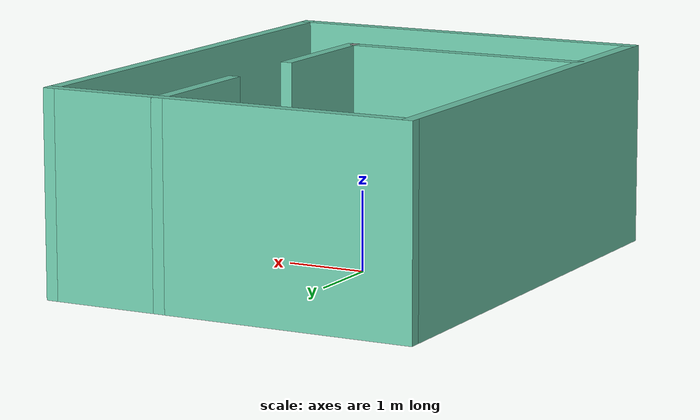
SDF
<?xml version='1.0'?>
<sdf version='1.6'>
  <model name='Project1'>
    <pose frame=''>0.167772 -0.087202 0 0 -0 0</pose>
    <link name='Wall_13'>
      <collision name='Wall_13_Collision'>
        <geometry>
          <box>
            <size>6.25 0.15 2.5</size>
          </box>
        </geometry>
        <pose frame=''>0 0 1.25 0 -0 0</pose>
      </collision>
      <visual name='Wall_13_Visual'>
        <pose frame=''>0 0 1.25 0 -0 0</pose>
        <geometry>
          <box>
            <size>6.25 0.15 2.5</size>
          </box>
        </geometry>
        <material>
          <script>
            <uri>file://media/materials/scripts/gazebo.material</uri>
            <name>Gazebo/Grey</name>
          </script>
          <ambient>0.435294 0.796078 0.67451 1</ambient>
        </material>
      </visual>
      <pose frame=''>-2.3 0 0 0 0 -1.5708</pose>
    </link>
    <link name='Wall_14'>
      <collision name='Wall_14_Collision'>
        <geometry>
          <box>
            <size>4.75 0.15 2.5</size>
          </box>
        </geometry>
        <pose frame=''>0 0 1.25 0 -0 0</pose>
      </collision>
      <visual name='Wall_14_Visual'>
        <pose frame=''>0 0 1.25 0 -0 0</pose>
        <geometry>
          <box>
            <size>4.75 0.15 2.5</size>
          </box>
        </geometry>
        <material>
          <script>
            <uri>file://media/materials/scripts/gazebo.material</uri>
            <name>Gazebo/Grey</name>
          </script>
          <ambient>0.435294 0.796078 0.67451 1</ambient>
        </material>
      </visual>
      <pose frame=''>0 -3.05 0 0 -0 0</pose>
    </link>
    <link name='Wall_15'>
      <collision name='Wall_15_Collision'>
        <geometry>
          <box>
            <size>6.25 0.15 2.5</size>
          </box>
        </geometry>
        <pose frame=''>0 0 1.25 0 -0 0</pose>
      </collision>
      <visual name='Wall_15_Visual'>
        <pose frame=''>0 0 1.25 0 -0 0</pose>
        <geometry>
          <box>
            <size>6.25 0.15 2.5</size>
          </box>
        </geometry>
        <material>
          <script>
            <uri>file://media/materials/scripts/gazebo.material</uri>
            <name>Gazebo/Grey</name>
          </script>
          <ambient>0.435294 0.796078 0.67451 1</ambient>
        </material>
      </visual>
      <pose frame=''>2.3 0 0 0 -0 1.5708</pose>
    </link>
    <link name='Wall_16'>
      <collision name='Wall_16_Collision'>
        <geometry>
          <box>
            <size>4.75 0.15 2.5</size>
          </box>
        </geometry>
        <pose frame=''>0 0 1.25 0 -0 0</pose>
      </collision>
      <visual name='Wall_16_Visual'>
        <pose frame=''>0 0 1.25 0 -0 0</pose>
        <geometry>
          <box>
            <size>4.75 0.15 2.5</size>
          </box>
        </geometry>
        <material>
          <script>
            <uri>file://media/materials/scripts/gazebo.material</uri>
            <name>Gazebo/Grey</name>
          </script>
          <ambient>0.435294 0.796078 0.67451 1</ambient>
        </material>
      </visual>
      <pose frame=''>0 3.05 0 0 -0 3.14159</pose>
    </link>
    <link name='Wall_18'>
      <collision name='Wall_18_Collision'>
        <geometry>
          <box>
            <size>1.75 0.15 2.5</size>
          </box>
        </geometry>
        <pose frame=''>0 0 1.25 0 -0 0</pose>
      </collision>
      <visual name='Wall_18_Visual'>
        <pose frame=''>0 0 1.25 0 -0 0</pose>
        <geometry>
          <box>
            <size>1.75 0.15 2.5</size>
          </box>
        </geometry>
        <material>
          <script>
            <uri>file://media/materials/scripts/gazebo.material</uri>
            <name>Gazebo/Grey</name>
          </script>
          <ambient>0.435294 0.796078 0.67451 1</ambient>
        </material>
      </visual>
      <pose frame=''>0.855313 2.25 0 0 0 -1.5708</pose>
    </link>
    <link name='Wall_20'>
      <collision name='Wall_20_Collision'>
        <geometry>
          <box>
            <size>3.25 0.15 2.5</size>
          </box>
        </geometry>
        <pose frame=''>0 0 1.25 0 -0 0</pose>
      </collision>
      <visual name='Wall_20_Visual'>
        <pose frame=''>0 0 1.25 0 -0 0</pose>
        <geometry>
          <box>
            <size>3.25 0.15 2.5</size>
          </box>
        </geometry>
        <material>
          <script>
            <uri>file://media/materials/scripts/gazebo.material</uri>
            <name>Gazebo/Grey</name>
          </script>
          <ambient>0.435294 0.796078 0.67451 1</ambient>
        </material>
      </visual>
      <pose frame=''>-0.715889 -1.50388 0 0 -0 0</pose>
    </link>
    <link name='Wall_21'>
      <collision name='Wall_21_Collision'>
        <geometry>
          <box>
            <size>0.15 0.15 2.5</size>
          </box>
        </geometry>
        <pose frame=''>0 0 1.25 0 -0 0</pose>
      </collision>
      <visual name='Wall_21_Visual'>
        <pose frame=''>0 0 1.25 0 -0 0</pose>
        <geometry>
          <box>
            <size>0.15 0.15 2.5</size>
          </box>
        </geometry>
        <material>
          <script>
            <uri>file://media/materials/scripts/gazebo.material</uri>
            <name>Gazebo/Grey</name>
          </script>
          <ambient>1 1 1 1</ambient>
        </material>
      </visual>
      <pose frame=''>0.834111 -1.50388 0 0 -0 0</pose>
    </link>
    <link name='Wall_22'>
      <collision name='Wall_22_Collision'>
        <geometry>
          <box>
            <size>1.75 0.15 2.5</size>
          </box>
        </geometry>
        <pose frame=''>0 0 1.25 0 -0 0</pose>
      </collision>
      <visual name='Wall_22_Visual'>
        <pose frame=''>0 0 1.25 0 -0 0</pose>
        <geometry>
          <box>
            <size>1.75 0.15 2.5</size>
          </box>
        </geometry>
        <material>
          <script>
            <uri>file://media/materials/scripts/gazebo.material</uri>
            <name>Gazebo/Grey</name>
          </script>
          <ambient>0.435294 0.796078 0.67451 1</ambient>
        </material>
      </visual>
      <pose frame=''>0.834111 -0.703884 0 0 -0 1.5708</pose>
    </link>
    <static>1</static>
  </model>
</sdf>
